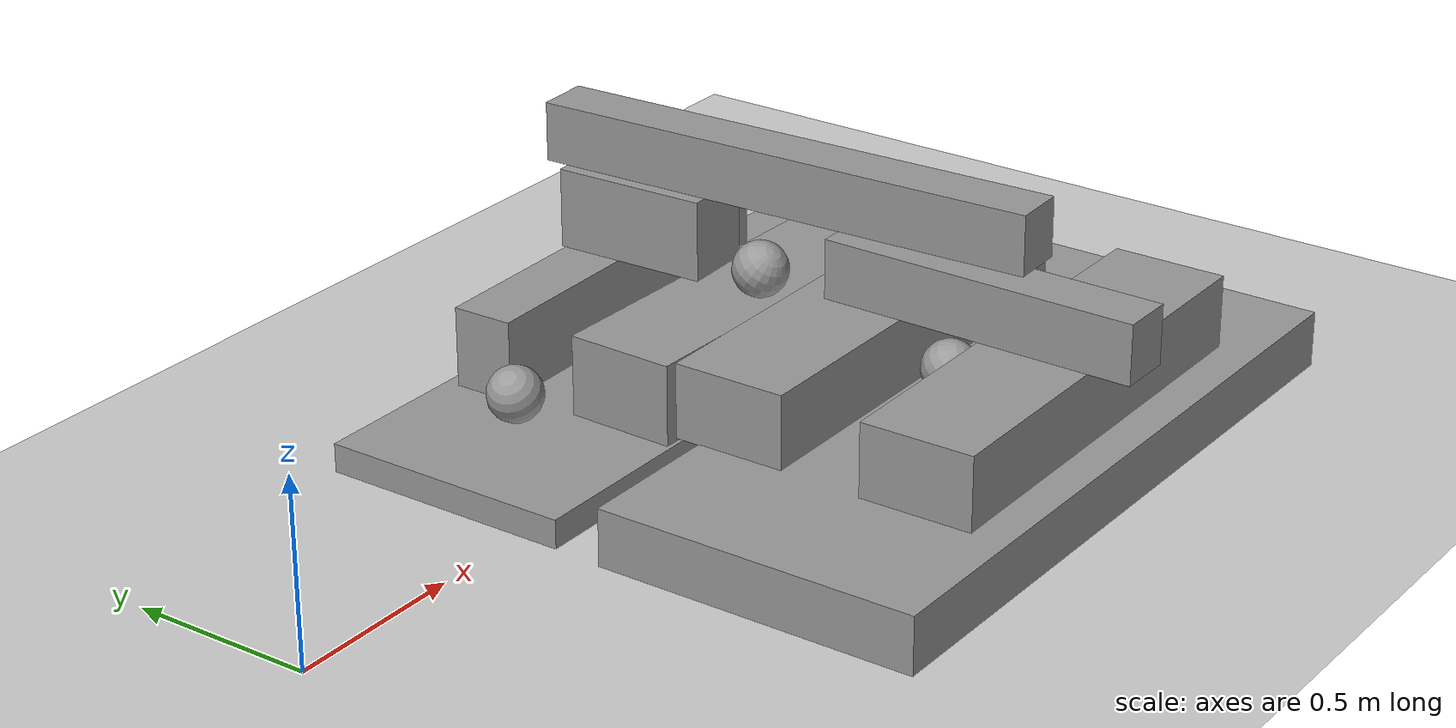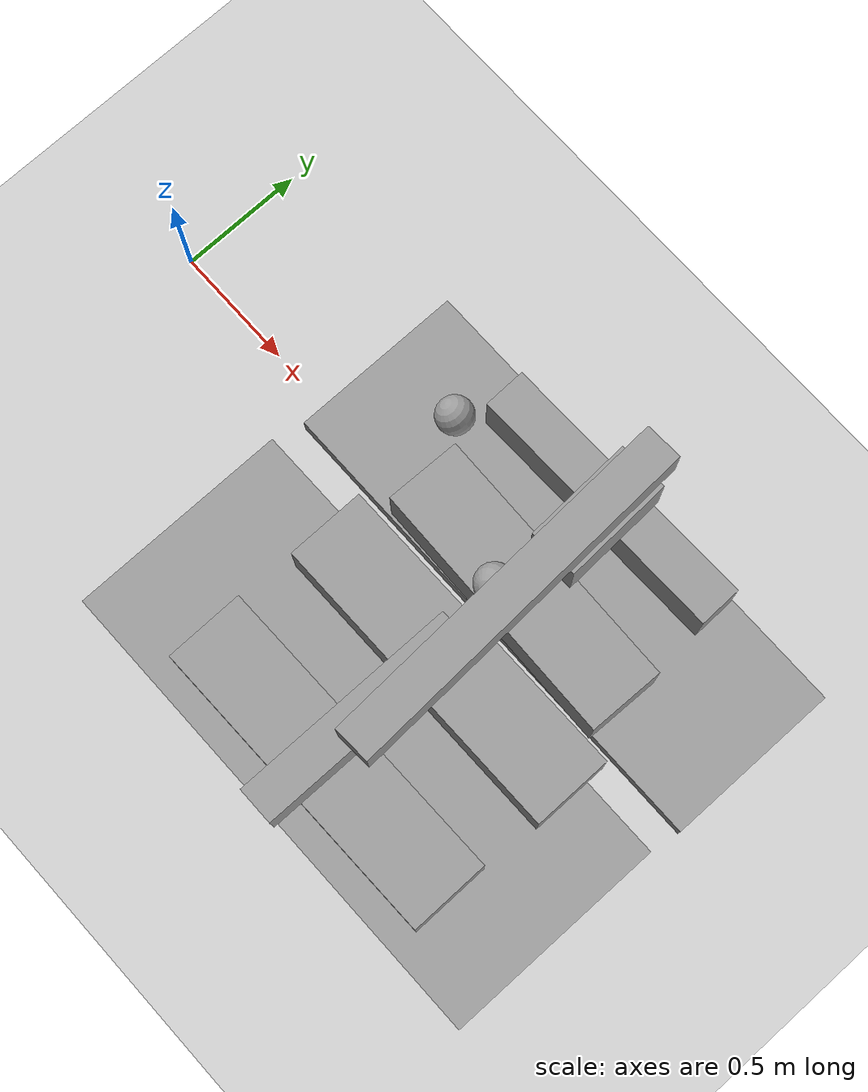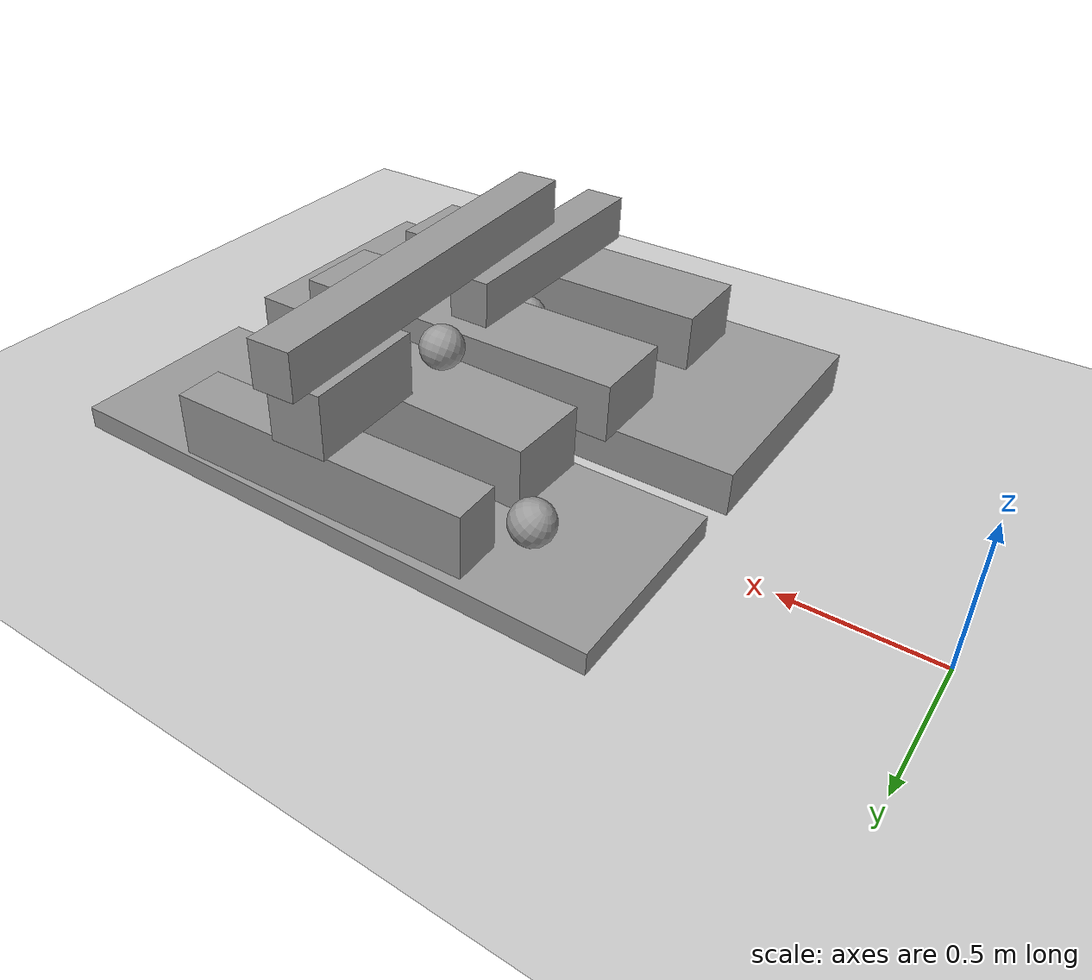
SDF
<sdf version="1.7">
 <world name="default">
  <model name="red_unit_sphere">
   <link name="link">
    <inertial>
     <mass>1</mass>
     <inertia><ixx>0.1</ixx><ixy>0</ixy><ixz>0</ixz><iyy>0.1</iyy><iyz>0</iyz><izz>0.1</izz></inertia>
    </inertial>
    <visual name="visual">
     <geometry><sphere><radius>0.0759064</radius></sphere></geometry>
     <material>
      <script><name>Gazebo/Grey</name><uri>file://media/materials/scripts/gazebo.material</uri></script>
      <shader type="pixel"><normal_map>__default__</normal_map></shader>
      <emissive>1 0 0 0</emissive>
      <ambient>0.3 0.3 0.3 1</ambient>
      <diffuse>0.7 0.7 0.7 1</diffuse>
      <specular>0.01 0.01 0.01 1</specular>
     </material>
    </visual>
    <collision name="collision">
     <geometry><sphere><radius>0.075906</radius></sphere></geometry>
     <surface>
      <friction>
       <ode><mu>1</mu><mu2>1</mu2><fdir1>0 0 0</fdir1><slip1>0</slip1><slip2>0</slip2></ode>
       <torsional>
        <coefficient>1</coefficient>
        <patch_radius>0</patch_radius>
        <surface_radius>0</surface_radius>
        <use_patch_radius>1</use_patch_radius>
        <ode><slip>0</slip></ode>
       </torsional>
      </friction>
      <bounce><restitution_coefficient>0</restitution_coefficient><threshold>1e+06</threshold></bounce>
      <contact>
       <collide_without_contact>0</collide_without_contact>
       <collide_without_contact_bitmask>1</collide_without_contact_bitmask>
       <collide_bitmask>1</collide_bitmask>
       <ode>
        <soft_cfm>0</soft_cfm>
        <soft_erp>0.2</soft_erp>
        <kp>1e+13</kp>
        <kd>1</kd>
        <max_vel>0.01</max_vel>
        <min_depth>0</min_depth>
       </ode>
       <bullet>
        <split_impulse>1</split_impulse>
        <split_impulse_penetration_threshold>-0.01</split_impulse_penetration_threshold>
        <soft_cfm>0</soft_cfm>
        <soft_erp>0.2</soft_erp>
        <kp>1e+13</kp>
        <kd>1</kd>
       </bullet>
      </contact>
     </surface>
    </collision>
   </link>
   <static>0</static>
   <pose>1.14573 0.30002 0.154975 -0.516189 -0.272535 1.36116</pose>
  </model>
  <model name="unit_box">
   <pose>1.78026 0.23779 0.039517 0 3.1e-05 -0.002056</pose>
   <link name="link">
    <inertial>
     <mass>1</mass>
     <inertia>
      <ixx>0.166667</ixx>
      <ixy>0</ixy>
      <ixz>0</ixz>
      <iyy>0.166667</iyy>
      <iyz>0</iyz>
      <izz>0.166667</izz>
     </inertia>
    </inertial>
    <collision name="collision">
     <geometry><box><size>1.99886 0.705305 0.0790958</size></box></geometry>
    </collision>
    <visual name="visual">
     <geometry><box><size>1.99886 0.705305 0.0790958</size></box></geometry>
     <material>
      <script><name>Gazebo/Grey</name><uri>file://media/materials/scripts/gazebo.material</uri></script>
     </material>
    </visual>
   </link>
   <static>true</static>
  </model>
  <model name="unit_box_0">
   <pose>1.76537 0.477182 0.190026 -3.5e-05 2e-05 0.019349</pose>
   <link name="link">
    <inertial>
     <mass>1</mass>
     <inertia>
      <ixx>0.166667</ixx>
      <ixy>0</ixy>
      <ixz>0</ixz>
      <iyy>0.166667</iyy>
      <iyz>0</iyz>
      <izz>0.166667</izz>
     </inertia>
    </inertial>
    <collision name="collision"><geometry><box><size>1.08646 0.171598 0.22199</size></box></geometry></collision>
    <visual name="visual">
     <geometry><box><size>1.08646 0.171598 0.22199</size></box></geometry>
     <material>
      <script><name>Gazebo/Grey</name><uri>file://media/materials/scripts/gazebo.material</uri></script>
     </material>
    </visual>
   </link>
   <static>true</static>
  </model>
  <model name="unit_box_0_clone">
   <pose>1.79188 0.035643 0.190047 -5.3e-05 1.2e-05 -0.026056</pose>
   <link name="link">
    <inertial>
     <mass>1</mass>
     <inertia>
      <ixx>0.166667</ixx>
      <ixy>0</ixy>
      <ixz>0</ixz>
      <iyy>0.166667</iyy>
      <iyz>0</iyz>
      <izz>0.166667</izz>
     </inertia>
    </inertial>
    <collision name="collision"><geometry><box><size>1.07796 0.303579 0.22199</size></box></geometry></collision>
    <visual name="visual">
     <geometry><box><size>1.07796 0.303579 0.22199</size></box></geometry>
     <material>
      <script><name>Gazebo/Grey</name><uri>file://media/materials/scripts/gazebo.material</uri></script>
     </material>
    </visual>
   </link>
   <static>true</static>
  </model>
  <model name="unit_box_0_clone_0">
   <pose>1.80188 0.359714 0.411919 3.14151 6e-05 0.041497</pose>
   <link name="link">
    <inertial>
     <mass>1</mass>
     <inertia>
      <ixx>0.166667</ixx>
      <ixy>0</ixy>
      <ixz>0</ixz>
      <iyy>0.166667</iyy>
      <iyz>0</iyz>
      <izz>0.166667</izz>
     </inertia>
    </inertial>
    <collision name="collision"><geometry><box><size>0.198306 0.435237 0.22199</size></box></geometry></collision>
    <visual name="visual">
     <geometry><box><size>0.198306 0.435237 0.22199</size></box></geometry>
     <material>
      <script><name>Gazebo/Grey</name><uri>file://media/materials/scripts/gazebo.material</uri></script>
     </material>
    </visual>
   </link>
   <static>true</static>
  </model>
  <model name="ground_plane">
   <static>1</static>
   <link name="link">
    <collision name="collision">
     <geometry><plane><normal>0 0 1</normal><size>100 100</size></plane></geometry>
     <surface>
      <contact><collide_bitmask>65535</collide_bitmask></contact>
      <friction><ode><mu>100</mu><mu2>50</mu2></ode></friction>
     </surface>
    </collision>
    <visual name="visual">
     <cast_shadows>0</cast_shadows>
     <geometry><plane><normal>0 0 1</normal><size>100 100</size></plane></geometry>
     <material>
      <script><uri>file://media/materials/scripts/gazebo.material</uri><name>Gazebo/Grey</name></script>
     </material>
    </visual>
   </link>
  </model>
  <light name="light" type="directional">
   <pose>0 4 2.5 -1 0 0</pose>
   <diffuse>1 1 1 1</diffuse>
   <specular>0.2 0.2 0.2 1</specular>
   <attenuation>
    <range>20</range>
    <constant>0.9</constant>
    <linear>0.01</linear>
    <quadratic>0.001</quadratic>
   </attenuation>
   <direction>0 0 -1</direction>
   <spot><inner_angle>0</inner_angle><outer_angle>0</outer_angle><falloff>0</falloff></spot>
  </light>
  <physics type="ode">
   <ode>
    <solver>
     <type>quick</type>
     <iters>100</iters>
     <precon_iters>0</precon_iters>
     <sor>1</sor>
     <use_dynamic_moi_rescaling>0</use_dynamic_moi_rescaling>
    </solver>
    <constraints>
     <cfm>0</cfm>
     <erp>0.2</erp>
     <contact_max_correcting_vel>0</contact_max_correcting_vel>
     <contact_surface_layer>0</contact_surface_layer>
    </constraints>
   </ode>
   <real_time_factor>1</real_time_factor>
   <max_step_size>0.001</max_step_size>
   <real_time_update_rate>1000</real_time_update_rate>
  </physics>
  <gravity>0 0 -9.81</gravity>
  <magnetic_field>6e-06 2.3e-05 -4.2e-05</magnetic_field>
  <atmosphere type="adiabatic"/>
  <scene><ambient>0.4 0.4 0.4 1</ambient><background>0.7 0.7 0.7 1</background><shadows>1</shadows></scene>
  <spherical_coordinates>
   <surface_model>EARTH_WGS84</surface_model>
   <latitude_deg>0</latitude_deg>
   <longitude_deg>0</longitude_deg>
   <elevation>0</elevation>
   <heading_deg>0</heading_deg>
  </spherical_coordinates>
  <model name="red_unit_sphere_clone">
   <link name="link">
    <inertial>
     <mass>1</mass>
     <inertia><ixx>0.1</ixx><ixy>0</ixy><ixz>0</ixz><iyy>0.1</iyy><iyz>0</iyz><izz>0.1</izz></inertia>
    </inertial>
    <visual name="visual">
     <geometry><sphere><radius>0.0759065</radius></sphere></geometry>
     <material>
      <script><name>Gazebo/Grey</name><uri>file://media/materials/scripts/gazebo.material</uri></script>
      <shader type="pixel"><normal_map>__default__</normal_map></shader>
      <emissive>1 0 0 0</emissive>
      <ambient>0.3 0.3 0.3 1</ambient>
      <diffuse>0.7 0.7 0.7 1</diffuse>
      <specular>0.01 0.01 0.01 1</specular>
     </material>
    </visual>
    <collision name="collision">
     <geometry><sphere><radius>0.0759058</radius></sphere></geometry>
     <surface>
      <friction>
       <ode><mu>1</mu><mu2>1</mu2><fdir1>0 0 0</fdir1><slip1>0</slip1><slip2>0</slip2></ode>
       <torsional>
        <coefficient>1</coefficient>
        <patch_radius>0</patch_radius>
        <surface_radius>0</surface_radius>
        <use_patch_radius>1</use_patch_radius>
        <ode><slip>0</slip></ode>
       </torsional>
      </friction>
      <bounce><restitution_coefficient>0</restitution_coefficient><threshold>1e+06</threshold></bounce>
      <contact>
       <collide_without_contact>0</collide_without_contact>
       <collide_without_contact_bitmask>1</collide_without_contact_bitmask>
       <collide_bitmask>1</collide_bitmask>
       <ode>
        <soft_cfm>0</soft_cfm>
        <soft_erp>0.2</soft_erp>
        <kp>1e+13</kp>
        <kd>1</kd>
        <max_vel>0.01</max_vel>
        <min_depth>0</min_depth>
       </ode>
       <bullet>
        <split_impulse>1</split_impulse>
        <split_impulse_penetration_threshold>-0.01</split_impulse_penetration_threshold>
        <soft_cfm>0</soft_cfm>
        <soft_erp>0.2</soft_erp>
        <kp>1e+13</kp>
        <kd>1</kd>
       </bullet>
      </contact>
     </surface>
    </collision>
   </link>
   <static>0</static>
   <pose>1.73316 -0.048074 0.377536 0.056208 -0.623244 1.40584</pose>
  </model>
  <model name="unit_box_clone">
   <pose>1.7653 -0.693732 0.077996 0 3.7e-05 -0.000315</pose>
   <link name="link">
    <inertial>
     <mass>1</mass>
     <inertia>
      <ixx>0.166667</ixx>
      <ixy>0</ixy>
      <ixz>0</ixz>
      <iyy>0.166667</iyy>
      <iyz>0</iyz>
      <izz>0.166667</izz>
     </inertia>
    </inertial>
    <collision name="collision"><geometry><box><size>1.9876 0.889061 0.156066</size></box></geometry></collision>
    <visual name="visual">
     <geometry><box><size>1.9876 0.889061 0.156066</size></box></geometry>
     <material>
      <script><name>Gazebo/Grey</name><uri>file://media/materials/scripts/gazebo.material</uri></script>
     </material>
    </visual>
   </link>
   <static>true</static>
  </model>
  <model name="red_unit_sphere_clone_clone">
   <link name="link">
    <inertial>
     <mass>1</mass>
     <inertia><ixx>0.1</ixx><ixy>0</ixy><ixz>0</ixz><iyy>0.1</iyy><iyz>0</iyz><izz>0.1</izz></inertia>
    </inertial>
    <visual name="visual">
     <geometry><sphere><radius>0.0759065</radius></sphere></geometry>
     <material>
      <script><name>Gazebo/Grey</name><uri>file://media/materials/scripts/gazebo.material</uri></script>
      <shader type="pixel"><normal_map>__default__</normal_map></shader>
      <emissive>1 0 0 0</emissive>
      <ambient>0.3 0.3 0.3 1</ambient>
      <diffuse>0.7 0.7 0.7 1</diffuse>
      <specular>0.01 0.01 0.01 1</specular>
     </material>
    </visual>
    <collision name="collision">
     <geometry><sphere><radius>0.0759058</radius></sphere></geometry>
     <surface>
      <friction>
       <ode><mu>1</mu><mu2>1</mu2><fdir1>0 0 0</fdir1><slip1>0</slip1><slip2>0</slip2></ode>
       <torsional>
        <coefficient>1</coefficient>
        <patch_radius>0</patch_radius>
        <surface_radius>0</surface_radius>
        <use_patch_radius>1</use_patch_radius>
        <ode><slip>0</slip></ode>
       </torsional>
      </friction>
      <bounce><restitution_coefficient>0</restitution_coefficient><threshold>1e+06</threshold></bounce>
      <contact>
       <collide_without_contact>0</collide_without_contact>
       <collide_without_contact_bitmask>1</collide_without_contact_bitmask>
       <collide_bitmask>1</collide_bitmask>
       <ode>
        <soft_cfm>0</soft_cfm>
        <soft_erp>0.2</soft_erp>
        <kp>1e+13</kp>
        <kd>1</kd>
        <max_vel>0.01</max_vel>
        <min_depth>0</min_depth>
       </ode>
       <bullet>
        <split_impulse>1</split_impulse>
        <split_impulse_penetration_threshold>-0.01</split_impulse_penetration_threshold>
        <soft_cfm>0</soft_cfm>
        <soft_erp>0.2</soft_erp>
        <kp>1e+13</kp>
        <kd>1</kd>
       </bullet>
      </contact>
     </surface>
    </collision>
   </link>
   <static>0</static>
   <pose>1.77168 -0.604647 0.231935 0.038806 -0.634516 1.41661</pose>
  </model>
  <model name="unit_box_0_clone_0_clone">
   <pose>1.80984 -0.335194 0.255891 -3.14076 -0.000211 0.003028</pose>
   <link name="link">
    <inertial>
     <mass>1</mass>
     <inertia>
      <ixx>0.166667</ixx>
      <ixy>0</ixy>
      <ixz>0</ixz>
      <iyy>0.166667</iyy>
      <iyz>0</iyz>
      <izz>0.166667</izz>
     </inertia>
    </inertial>
    <collision name="collision"><geometry><box><size>1.25676 0.313708 0.204397</size></box></geometry></collision>
    <visual name="visual">
     <geometry><box><size>1.25676 0.313708 0.204397</size></box></geometry>
     <material>
      <script><name>Gazebo/Grey</name><uri>file://media/materials/scripts/gazebo.material</uri></script>
     </material>
    </visual>
   </link>
   <static>true</static>
  </model>
  <model name="unit_box_0_clone_0_clone_clone">
   <pose>1.79647 -0.876841 0.255428 -3.14078 -0.000215 0.007289</pose>
   <link name="link">
    <inertial>
     <mass>1</mass>
     <inertia>
      <ixx>0.166667</ixx>
      <ixy>0</ixy>
      <ixz>0</ixz>
      <iyy>0.166667</iyy>
      <iyz>0</iyz>
      <izz>0.166667</izz>
     </inertia>
    </inertial>
    <collision name="collision"><geometry><box><size>1.2453 0.313708 0.204397</size></box></geometry></collision>
    <visual name="visual">
     <geometry><box><size>1.2453 0.313708 0.204397</size></box></geometry>
     <material>
      <script><name>Gazebo/Grey</name><uri>file://media/materials/scripts/gazebo.material</uri></script>
     </material>
    </visual>
   </link>
   <static>true</static>
  </model>
  <model name="unit_box_clone_clone">
   <pose>1.78124 -0.707911 0.43972 0.000817 -0.000206 -0.004272</pose>
   <link name="link">
    <inertial>
     <mass>1</mass>
     <inertia>
      <ixx>0.166667</ixx>
      <ixy>0</ixy>
      <ixz>0</ixz>
      <iyy>0.166667</iyy>
      <iyz>0</iyz>
      <izz>0.166667</izz>
     </inertia>
    </inertial>
    <collision name="collision">
     <geometry><box><size>0.148497 0.889061 0.163918</size></box></geometry>
    </collision>
    <visual name="visual">
     <geometry><box><size>0.148497 0.889061 0.163918</size></box></geometry>
     <material>
      <script><name>Gazebo/Grey</name><uri>file://media/materials/scripts/gazebo.material</uri></script>
     </material>
    </visual>
   </link>
   <static>true</static>
  </model>
  <model name="unit_box_clone_clone_clone">
   <pose>1.83058 -0.075916 0.605967 -0.001723 0.000101 0.043319</pose>
   <link name="link">
    <inertial>
     <mass>1</mass>
     <inertia>
      <ixx>0.166667</ixx>
      <ixy>0</ixy>
      <ixz>0</ixz>
      <iyy>0.166667</iyy>
      <iyz>0</iyz>
      <izz>0.166667</izz>
     </inertia>
    </inertial>
    <collision name="collision"><geometry><box><size>0.148497 1.44036 0.163918</size></box></geometry></collision>
    <visual name="visual">
     <geometry><box><size>0.148497 1.44036 0.163918</size></box></geometry>
     <material>
      <script><name>Gazebo/Grey</name><uri>file://media/materials/scripts/gazebo.material</uri></script>
     </material>
    </visual>
   </link>
   <static>true</static>
  </model>
 </world>
</sdf>
